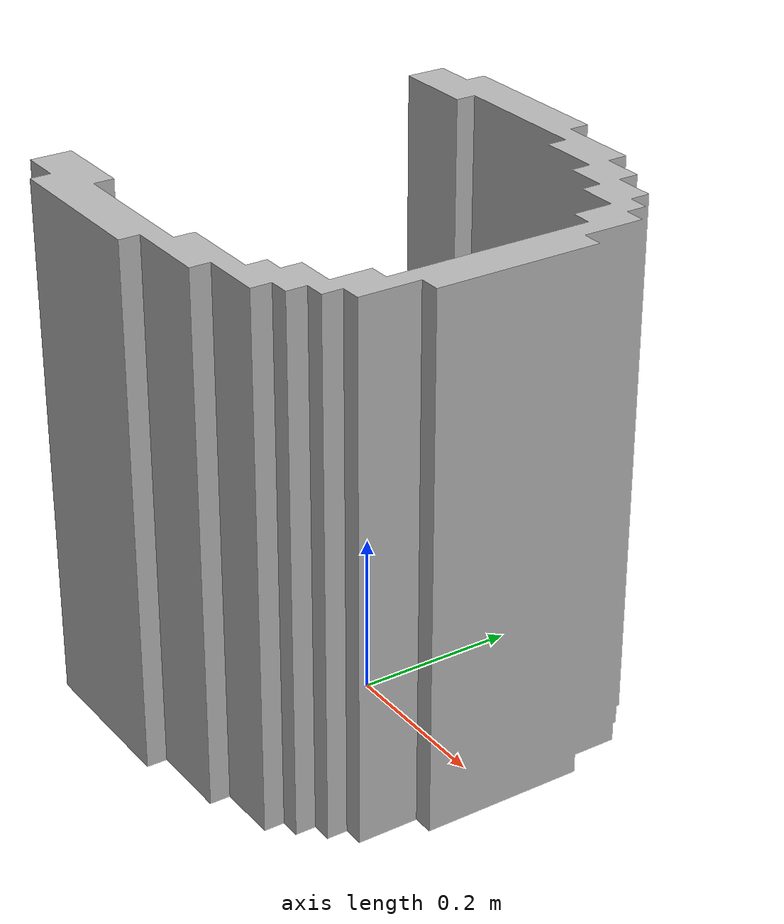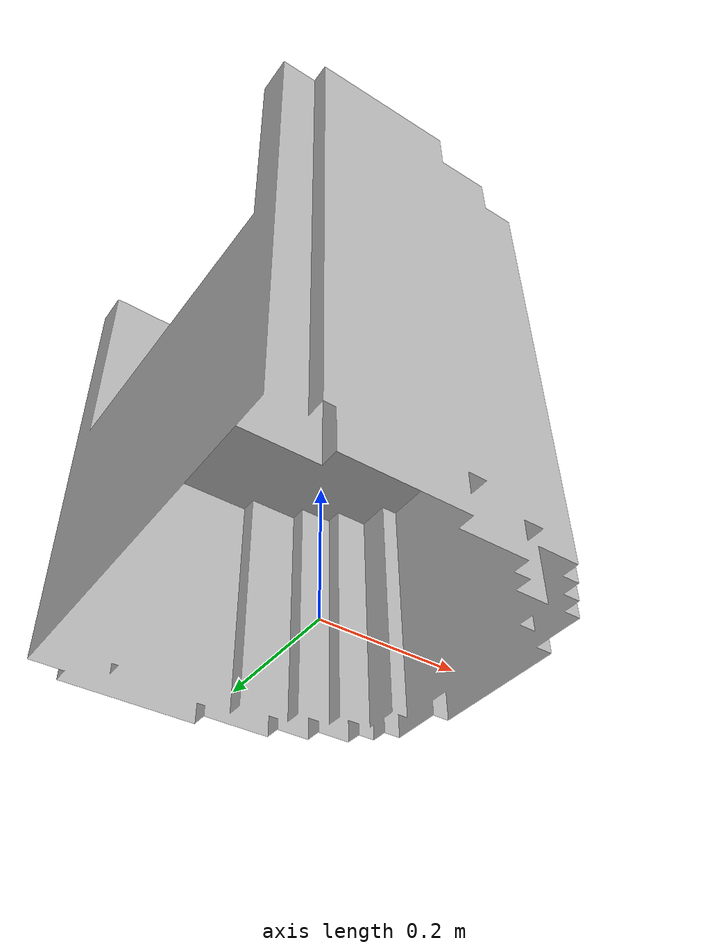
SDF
<?xml version="1.0"?>
<sdf version="1.6">
  <model name="rgo2019/armchair">
    <link name="1_link">
      <collision name="1_col">
        <geometry>
          <mesh>
            <uri>model://rgo2019/armchair/heightmap.stl</uri>
          </mesh>
        </geometry>
      </collision>
      <visual name="1_vis">
        <geometry>
          <mesh>
            <uri>model://rgo2019/armchair/heightmap.stl</uri>
          </mesh>
        </geometry>
      </visual>
      <pose>0 0 0 0 0 -1.57</pose>
    </link>
    <link name="on_top_of">
      <virtual_volume name="on_top_of_vv">
        <geometry>
          <box>
            <size>0.35 0.40 0.30</size>
          </box>
        </geometry>
        <pose>-0.07 0.0 0.51 0 0 0</pose>
      </virtual_volume>
    </link>
    <link name="in_front_of">
      <virtual_volume name="in_front_of_vv">
        <geometry>
          <box>
            <size>0.2 0.6 0.01</size>
          </box>
        </geometry>
        <pose>-0.60 0.0 0.005 0 0 0</pose>
      </virtual_volume>
    </link>
    <static>true</static>
  </model>
</sdf>
